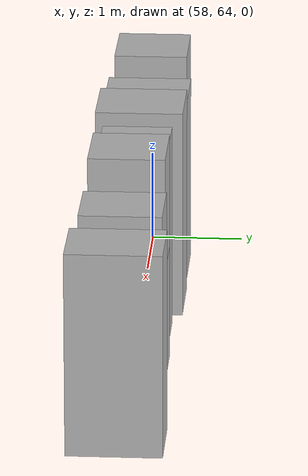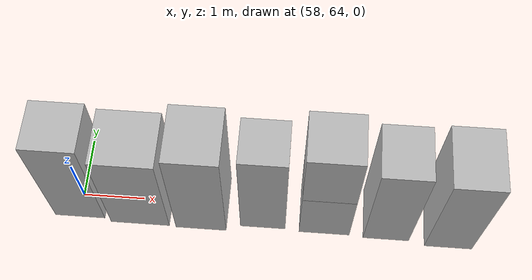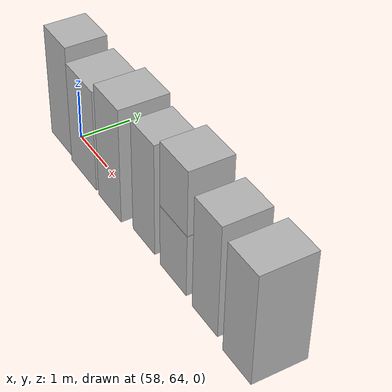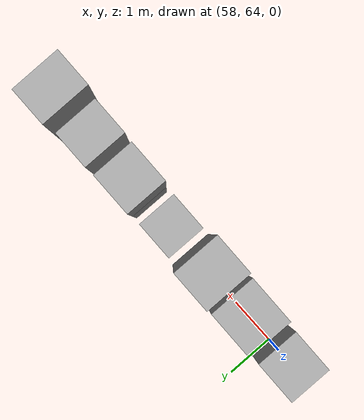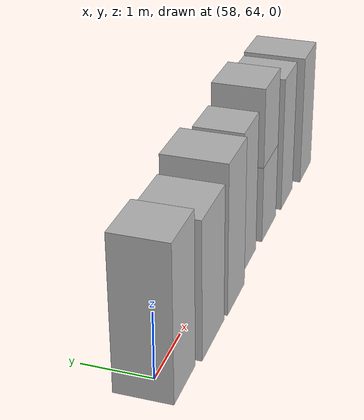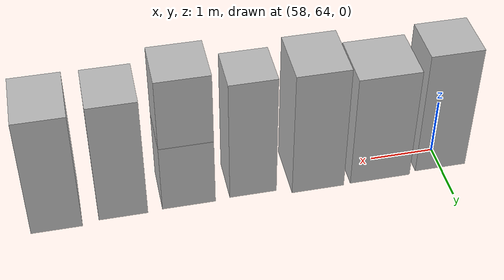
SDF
<sdf version="1.5">
 <world name="default">
  <model name="ground_plane">
   <static>true</static>
   <link name="link">
    <collision name="collision">
     <geometry><plane><normal>0 0 1</normal><size>250 250</size></plane></geometry>
     <surface><friction><ode><mu>1</mu><mu2>1</mu2></ode></friction></surface>
    </collision>
    <visual name="grass">
     <cast_shadows>false</cast_shadows>
     <geometry><mesh><uri>file://grass_plane/meshes/grass_plane.dae</uri></mesh></geometry>
    </visual>
   </link>
  </model>
  <model name="Cardboard_box_313">
   <link name="link_0">
    <pose>58 64 0 0 0 0</pose>
    <inertial>
     <mass>1</mass>
     <inertia>
      <ixx>0.166667</ixx>
      <ixy>0</ixy>
      <ixz>0</ixz>
      <iyy>0.166667</iyy>
      <iyz>0</iyz>
      <izz>0.166667</izz>
     </inertia>
    </inertial>
    <collision name="collision">
     <geometry>
      <mesh>
       <uri>model://Cardboard_box/meshes/cardboard_box.dae</uri>
       <scale>2.05694052872 2.00946699498 5.73291745198</scale>
      </mesh>
     </geometry>
    </collision>
    <visual name="visual">
     <geometry>
      <mesh>
       <uri>model://Cardboard_box/meshes/cardboard_box.dae</uri>
       <scale>2.05694052872 2.00946699498 5.73291745198</scale>
      </mesh>
     </geometry>
    </visual>
   </link>
   <static>1</static>
  </model>
  <model name="Cardboard_box_314">
   <link name="link_0">
    <pose>59 64 0 0 0 0</pose>
    <inertial>
     <mass>1</mass>
     <inertia>
      <ixx>0.166667</ixx>
      <ixy>0</ixy>
      <ixz>0</ixz>
      <iyy>0.166667</iyy>
      <iyz>0</iyz>
      <izz>0.166667</izz>
     </inertia>
    </inertial>
    <collision name="collision">
     <geometry>
      <mesh>
       <uri>model://Cardboard_box/meshes/cardboard_box.dae</uri>
       <scale>2.41121675997 2.28128570309 5.2002555457</scale>
      </mesh>
     </geometry>
    </collision>
    <visual name="visual">
     <geometry>
      <mesh>
       <uri>model://Cardboard_box/meshes/cardboard_box.dae</uri>
       <scale>2.41121675997 2.28128570309 5.2002555457</scale>
      </mesh>
     </geometry>
    </visual>
   </link>
   <static>1</static>
  </model>
  <model name="Cardboard_box_315">
   <link name="link_0">
    <pose>60 64 0 0 0 0</pose>
    <inertial>
     <mass>1</mass>
     <inertia>
      <ixx>0.166667</ixx>
      <ixy>0</ixy>
      <ixz>0</ixz>
      <iyy>0.166667</iyy>
      <iyz>0</iyz>
      <izz>0.166667</izz>
     </inertia>
    </inertial>
    <collision name="collision">
     <geometry>
      <mesh>
       <uri>model://Cardboard_box/meshes/cardboard_box.dae</uri>
       <scale>2.06617747315 2.35845404755 5.78815911428</scale>
      </mesh>
     </geometry>
    </collision>
    <visual name="visual">
     <geometry>
      <mesh>
       <uri>model://Cardboard_box/meshes/cardboard_box.dae</uri>
       <scale>2.06617747315 2.35845404755 5.78815911428</scale>
      </mesh>
     </geometry>
    </visual>
   </link>
   <static>1</static>
  </model>
  <model name="Cardboard_box_316">
   <link name="link_0">
    <pose>61 64 0 0 0 0</pose>
    <inertial>
     <mass>1</mass>
     <inertia>
      <ixx>0.166667</ixx>
      <ixy>0</ixy>
      <ixz>0</ixz>
      <iyy>0.166667</iyy>
      <iyz>0</iyz>
      <izz>0.166667</izz>
     </inertia>
    </inertial>
    <collision name="collision">
     <geometry>
      <mesh>
       <uri>model://Cardboard_box/meshes/cardboard_box.dae</uri>
       <scale>1.83672911689 1.86156320345 5.60968341713</scale>
      </mesh>
     </geometry>
    </collision>
    <visual name="visual">
     <geometry>
      <mesh>
       <uri>model://Cardboard_box/meshes/cardboard_box.dae</uri>
       <scale>1.83672911689 1.86156320345 5.60968341713</scale>
      </mesh>
     </geometry>
    </visual>
   </link>
   <static>1</static>
  </model>
  <model name="Cardboard_box_317">
   <link name="link_0">
    <pose>62 64 0 0 0 0</pose>
    <inertial>
     <mass>1</mass>
     <inertia>
      <ixx>0.166667</ixx>
      <ixy>0</ixy>
      <ixz>0</ixz>
      <iyy>0.166667</iyy>
      <iyz>0</iyz>
      <izz>0.166667</izz>
     </inertia>
    </inertial>
    <collision name="collision">
     <geometry>
      <mesh>
       <uri>model://Cardboard_box/meshes/cardboard_box.dae</uri>
       <scale>2.05543859712 2.01459982183 3.11318389606</scale>
      </mesh>
     </geometry>
    </collision>
    <visual name="visual">
     <geometry>
      <mesh>
       <uri>model://Cardboard_box/meshes/cardboard_box.dae</uri>
       <scale>2.05543859712 2.01459982183 3.11318389606</scale>
      </mesh>
     </geometry>
    </visual>
   </link>
   <static>1</static>
  </model>
  <model name="Cardboard_box_top_317">
   <link name="link_0">
    <pose>62 64 1.24527355842 0 0 0</pose>
    <inertial>
     <mass>1</mass>
     <inertia>
      <ixx>0.166667</ixx>
      <ixy>0</ixy>
      <ixz>0</ixz>
      <iyy>0.166667</iyy>
      <iyz>0</iyz>
      <izz>0.166667</izz>
     </inertia>
    </inertial>
    <collision name="collision">
     <geometry>
      <mesh>
       <uri>model://Cardboard_box/meshes/cardboard_box.dae</uri>
       <scale>2.05543859712 2.01459982183 3.11318389606</scale>
      </mesh>
     </geometry>
    </collision>
    <visual name="visual">
     <geometry>
      <mesh>
       <uri>model://Cardboard_box/meshes/cardboard_box.dae</uri>
       <scale>2.05543859712 2.01459982183 3.11318389606</scale>
      </mesh>
     </geometry>
    </visual>
   </link>
   <static>1</static>
  </model>
  <model name="Cardboard_box_318">
   <link name="link_0">
    <pose>63 64 0 0 0 0</pose>
    <inertial>
     <mass>1</mass>
     <inertia>
      <ixx>0.166667</ixx>
      <ixy>0</ixy>
      <ixz>0</ixz>
      <iyy>0.166667</iyy>
      <iyz>0</iyz>
      <izz>0.166667</izz>
     </inertia>
    </inertial>
    <collision name="collision">
     <geometry>
      <mesh>
       <uri>model://Cardboard_box/meshes/cardboard_box.dae</uri>
       <scale>1.85979449886 2.1550519673 5.56167639358</scale>
      </mesh>
     </geometry>
    </collision>
    <visual name="visual">
     <geometry>
      <mesh>
       <uri>model://Cardboard_box/meshes/cardboard_box.dae</uri>
       <scale>1.85979449886 2.1550519673 5.56167639358</scale>
      </mesh>
     </geometry>
    </visual>
   </link>
   <static>1</static>
  </model>
  <model name="Cardboard_box_319">
   <link name="link_0">
    <pose>64 64 0 0 0 0</pose>
    <inertial>
     <mass>1</mass>
     <inertia>
      <ixx>0.166667</ixx>
      <ixy>0</ixy>
      <ixz>0</ixz>
      <iyy>0.166667</iyy>
      <iyz>0</iyz>
      <izz>0.166667</izz>
     </inertia>
    </inertial>
    <collision name="collision">
     <geometry>
      <mesh>
       <uri>model://Cardboard_box/meshes/cardboard_box.dae</uri>
       <scale>1.92172092429 2.48958704609 5.45951556092</scale>
      </mesh>
     </geometry>
    </collision>
    <visual name="visual">
     <geometry>
      <mesh>
       <uri>model://Cardboard_box/meshes/cardboard_box.dae</uri>
       <scale>1.92172092429 2.48958704609 5.45951556092</scale>
      </mesh>
     </geometry>
    </visual>
   </link>
   <static>1</static>
  </model>
 </world>
</sdf>
